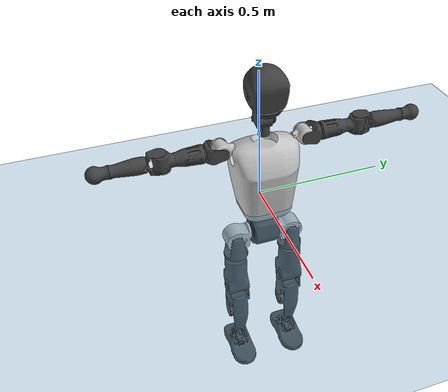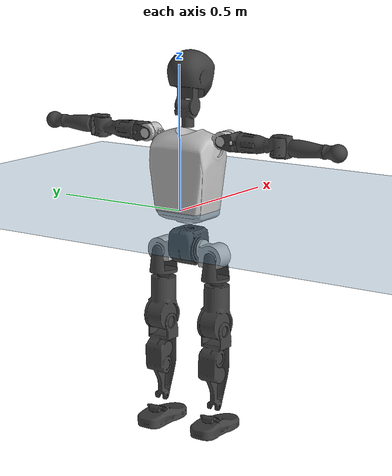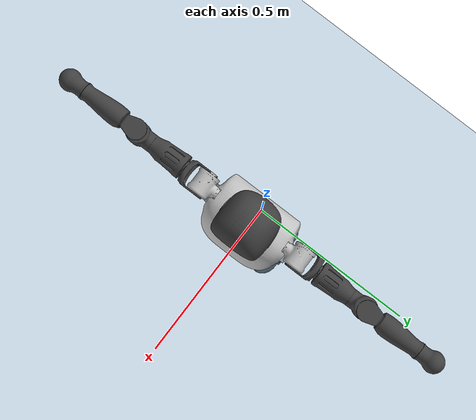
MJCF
<mujoco model="T1">
  <compiler angle="radian" assetdir="assets" balanceinertia="true" inertiafromgeom="false"/>

  <option timestep="0.005" density="1.2" viscosity="2e-05"/>

  <size nkey="1"/>

  <visual>
    <quality shadowsize="8192"/>
    <map shadowclip="0.5"/>
  </visual>

  <default>
    <default class="/">
      <joint armature="0.01" damping="0.01" frictionloss="0.1"/>
      <geom contype="0" conaffinity="0" group="1" solref="-1000 -80"/>
      <site size="0.01 0.005 0.005" group="5"/>
      <general forcelimited="true" biastype="affine" gainprm="25" biasprm="0 -25 -0.6"/>
      <default class="t1">
        <geom rgba="0.25 0.25 0.25 1"/>
        <default class="visual">
          <geom type="mesh" group="2"/>
        </default>
        <default class="collision">
          <geom group="3"/>
        </default>
        <default class="foot">
          <geom size="0.1115 0.05 0.015" type="box" condim="6" group="4" priority="1" solimp="0.015 1 0.015"/>
        </default>
        <default class="reward_collision_sphere">
          <geom group="5" rgba="1 0 0 1"/>
        </default>
      </default>
    </default>
  </default>

  <asset>
    <texture type="skybox" colorspace="auto" name="//unnamed_texture_0" builtin="gradient" rgb1="0.95 0.95 0.95" rgb2="0.95 0.95 0.95" width="100" height="600"/>
    <texture type="2d" colorspace="auto" name="texplane" builtin="checker" rgb1="0.345 0.575 0.748" rgb2="0.345 0.575 0.748" markrgb="1 1 1" width="512" height="512"/>
    <material name="MatPlane" class="/" texture="texplane" texuniform="true" texrepeat="2 2" specular="0.9"/>
    <mesh name="Trunk" class="/" file="Trunk.stl"/>
    <mesh name="H1" class="/" file="H1.stl"/>
    <mesh name="H2" class="/" file="H2.stl"/>
    <mesh name="AL1" class="/" file="AL1.stl"/>
    <mesh name="AL2" class="/" file="AL2.stl"/>
    <mesh name="AL3" class="/" file="AL3.stl"/>
    <mesh name="left_hand_link" class="/" file="left_hand_link.stl"/>
    <mesh name="AR1" class="/" file="AR1.stl"/>
    <mesh name="AR2" class="/" file="AR2.stl"/>
    <mesh name="AR3" class="/" file="AR3.stl"/>
    <mesh name="right_hand_link" class="/" file="right_hand_link.stl"/>
    <mesh name="Waist" class="/" file="Waist.stl"/>
    <mesh name="Hip_Pitch_Left" class="/" file="Hip_Pitch_Left.stl"/>
    <mesh name="Hip_Roll_Left" class="/" file="Hip_Roll_Left.stl"/>
    <mesh name="Hip_Yaw_Left" class="/" file="Hip_Yaw_Left.stl"/>
    <mesh name="Shank_Left" class="/" file="Shank_Left.stl"/>
    <mesh name="Ankle_Cross_Left" class="/" file="Ankle_Cross_Left.stl"/>
    <mesh name="left_foot_link" class="/" file="left_foot_link.stl"/>
    <mesh name="Hip_Pitch_Right" class="/" file="Hip_Pitch_Right.stl"/>
    <mesh name="Hip_Roll_Right" class="/" file="Hip_Roll_Right.stl"/>
    <mesh name="Hip_Yaw_Right" class="/" file="Hip_Yaw_Right.stl"/>
    <mesh name="Shank_Right" class="/" file="Shank_Right.stl"/>
    <mesh name="Ankle_Cross_Right" class="/" file="Ankle_Cross_Right.stl"/>
    <mesh name="right_foot_link" class="/" file="right_foot_link.stl"/>
  </asset>

  <worldbody>
    <geom name="floor" class="/" size="100 100 0.125" type="plane" group="0" material="MatPlane"/>
    <light name="toplight_shadow" class="/" pos="0 0 5" dir="0.0990148 0.0990148 -0.990148" type="directional" ambient="0.04 0.04 0.04" diffuse="0.55 0.55 0.55" specular="0.12 0.12 0.12"/>
    <light name="toplight_fill" class="/" pos="0 0 5" dir="0.0990148 0.0990148 -0.990148" type="directional" castshadow="false" ambient="0.04 0.04 0.04" diffuse="0.3 0.3 0.3" specular="0.08 0.08 0.08"/>
    <body name="trunk" childclass="t1" pos="-0.000262754 -0.00117582 -0.000548872" quat="0.999999 0.0011303 -0.00069908 -0.00032106">
      <inertial pos="0.0405673 -0.00352093 0.122727" quat="0.99996 -0.000127058 -0.00897367 6.95921e-05" mass="11.2854" diaginertia="0.0291329 0.0857629 0.120985"/>
      <joint name="//unnamed_joint_0" type="free" armature="0" damping="0" frictionloss="0"/>
      <geom name="//unnamed_geom_1" class="visual" rgba="0.76 0.76 0.76 1" mesh="Trunk"/>
      <geom name="//unnamed_geom_2" class="collision" size="0.0748603 0.0998137 0.149721" pos="0.0475921 0 0.141068" type="box"/>
      <geom name="//unnamed_geom_3" class="reward_collision_sphere" size="0.114786" pos="0.0475921 0 0.117556"/>
      <geom name="//unnamed_geom_4" class="reward_collision_sphere" size="0.0149721" pos="0.0475921 0.0871799 0"/>
      <geom name="//unnamed_geom_5" class="reward_collision_sphere" size="0.0149721" pos="0.0475921 -0.0871799 0"/>
      <geom name="//unnamed_geom_6" class="reward_collision_sphere" size="0.0149721" pos="0.0475921 0.109744 0.211602"/>
      <geom name="//unnamed_geom_7" class="reward_collision_sphere" size="0.0149721" pos="0.0475921 -0.109744 0.211602"/>
      <site name="imu" pos="0.0113454 -0.00485114 -0.0113958" size="0.00998137"/>
      <camera name="track" pos="0 -2.05129 0" quat="0.707107 0.707107 0 0" mode="trackcom"/>
      <camera name="ego_camera" pos="0.0967705 0 0.493737" quat="-0.5 -0.5 0.5 0.5"/>
      <body name="H1" pos="0.0476866 0.000714757 0.285316" quat="1 -8.40443e-05 6.3843e-05 -7.36845e-05">
        <inertial pos="-0.00313324 0.00105697 0.0683101" quat="0.762332 -0.0157534 0.0150633 0.64682" mass="0.441133" diaginertia="7.56595e-05 0.000246166 0.000317854"/>
        <joint name="AAHead_yaw" pos="0 0 0" axis="-0.0062856 0.0116301 0.999913" stiffness="0.00903948" range="-1.55925 1.59028" armature="0.0090388" damping="0.0092721" frictionloss="0.101169"/>
        <geom name="//unnamed_geom_8" class="visual" mesh="H1"/>
        <body name="H2" pos="0.00111582 0.00250712 0.0727494" quat="1 -6.48653e-05 0.000351753 0.000406514">
          <inertial pos="0.00687944 0.00360874 0.115918" quat="0.988816 0.101384 -0.0767783 -0.0779067" mass="0.626989" diaginertia="0.000663195 0.00217733 0.00387702"/>
          <joint name="Head_pitch" pos="0 0 0" axis="0.00257771 -0.999997 -0.000282028" stiffness="0.000778248" range="-1.23091 0.351478" armature="0.00862411" damping="0.0099145" frictionloss="0.111609"/>
          <geom name="//unnamed_geom_9" class="visual" mesh="H2"/>
          <geom name="//unnamed_geom_10" class="collision" size="0.0798509" pos="0.00793201 0 0.129312"/>
          <geom name="//unnamed_geom_11" class="reward_collision_sphere" size="0.0898323" pos="0.015864 0 0.117556"/>
        </body>
      </body>
      <body name="AL1" pos="0.0467882 0.108963 0.255057" quat="1 1.28785e-05 0.000410243 -3.2568e-05">
        <inertial pos="-0.00335676 0.045279 0.000822558" quat="0.504998 0.494611 -0.506044 0.494223" mass="0.531013" diaginertia="0.000436725 0.00148519 0.000645117"/>
        <joint name="Left_Shoulder_Pitch" pos="0 0 0" axis="-0.0108294 0.999902 -0.00885321" range="-3.29005 1.19822" armature="0.0105448" damping="0.00896871" frictionloss="0.100618"/>
        <geom name="//unnamed_geom_12" class="visual" rgba="0.76 0.76 0.76 1" mesh="AL1"/>
        <body name="AL2" pos="-0.000488522 0.0474268 -0.00245015" quat="1 0.0001645 -4.59667e-05 0.000183257">
          <inertial pos="0.00434329 0.0376889 -0.00297988" quat="0.485831 0.519681 -0.491309 0.502509" mass="0.154942" diaginertia="0.000124611 0.000390856 0.000388777"/>
          <joint name="Left_Shoulder_Roll" pos="0 0 0" axis="-0.99998 -0.00513307 -0.00376398" stiffness="0.00075651" range="-1.58193 1.72081" armature="0.00999997" damping="0.00211857" frictionloss="0.0990755"/>
          <geom name="//unnamed_geom_13" class="visual" mesh="AL2"/>
          <body name="AL3" pos="0.00127159 0.0629246 0.00123027" quat="1 4.67905e-05 -0.000346388 -5.28209e-05">
            <inertial pos="-0.00230824 0.0875209 -0.000534592" quat="0.703057 0.711023 -0.00658285 0.0106633" mass="1.03238" diaginertia="0.00414991 0.0146854 0.00137072"/>
            <joint name="Left_Elbow_Pitch" pos="0 0 0" axis="-0.000158103 -1 0.000351933" range="-2.26648 2.29177" armature="0.00994233" damping="0.0221406" frictionloss="0.112893"/>
            <geom name="//unnamed_geom_14" class="visual" mesh="AL3"/>
            <geom name="//unnamed_geom_15" class="collision" size="0.0299441 0.0748603" pos="0 0.0512823 0" quat="0.707105 0.707108 0 0" type="cylinder"/>
            <geom name="//unnamed_geom_16" class="reward_collision_sphere" size="0.0359329"/>
            <body name="left_hand_link" pos="0.00315643 0.153343 0.00297972" quat="1 -0.000291629 0.000448859 7.97078e-06">
              <inertial pos="0.0025549 0.11023 -0.00229103" quat="0.708055 0.706156 -0.000374238 -0.00148017" mass="0.324735" diaginertia="0.00255346 0.00946371 0.000497199"/>
              <joint name="Left_Elbow_Yaw" pos="0 0 0" axis="0.000853774 0.0063036 0.99998" range="-2.4285 0.0197398" armature="0.0110346" damping="0.0171555" frictionloss="0.099296"/>
              <geom name="//unnamed_geom_17" class="visual" mesh="left_hand_link"/>
              <geom name="//unnamed_geom_18" class="collision" size="0.0299441 0.087337" pos="0 0.133334 0" quat="0.707105 0.707108 0 0" type="cylinder"/>
              <geom name="//unnamed_geom_19" class="reward_collision_sphere" size="0.0499068"/>
              <geom name="//unnamed_geom_20" class="reward_collision_sphere" size="0.0349348" pos="0 0.112821 0"/>
              <geom name="//unnamed_geom_21" class="reward_collision_sphere" size="0.0349348" pos="0 0.220514 0"/>
            </body>
          </body>
        </body>
      </body>
      <body name="AR1" pos="0.0463771 -0.10805 0.256219" quat="0.999999 0.000905632 0.00100121 0.000392351">
        <inertial pos="-0.000408612 -0.0469869 0.000639649" quat="0.504088 0.495492 -0.502569 0.497802" mass="0.544679" diaginertia="0.000429822 0.00152107 0.000683729"/>
        <joint name="Right_Shoulder_Pitch" pos="0 0 0" axis="-0.00160413 -0.999996 0.00239027" stiffness="0.000867903" range="-1.18724 3.3097" armature="0.0100926" damping="0.00899993" frictionloss="0.0962352"/>
        <geom name="//unnamed_geom_22" class="visual" rgba="0.76 0.76 0.76 1" mesh="AR1"/>
        <body name="AR2" pos="-0.000237041 -0.0484115 -0.00283384" quat="0.999999 0.000208257 -0.00136548 0.000533208">
          <inertial pos="0.00275078 -0.0389784 0.000889882" quat="0.506248 0.482078 -0.518525 0.492388" mass="0.154182" diaginertia="0.00012257 0.000387346 0.000385156"/>
          <joint name="Right_Shoulder_Roll" pos="0 0 0" axis="-1 0.000286438 -0.000816507" range="-1.7558 1.55269" armature="0.00990438" damping="0" frictionloss="0.104214"/>
          <geom name="//unnamed_geom_23" class="visual" mesh="AR2"/>
          <body name="AR3" pos="-0.0027382 -0.0620217 -0.000250608" quat="0.999999 0.000239578 0.000594862 0.00125764">
            <inertial pos="0.00203335 -0.0875653 0.000699148" quat="0.711027 0.703159 0.00197215 0.00199912" mass="1.01076" diaginertia="0.00410378 0.0147872 0.00140084"/>
            <joint name="Right_Elbow_Pitch" pos="0 0 0" axis="0.00705083 0.999973 -0.00193989" range="-2.27418 2.22404" armature="0.0103561" damping="0.00567955" frictionloss="0.105295"/>
            <geom name="//unnamed_geom_24" class="visual" mesh="AR3"/>
            <geom name="//unnamed_geom_25" class="collision" size="0.0299441 0.0748603" pos="0 -0.0512823 0" quat="0.707105 0.707108 0 0" type="cylinder"/>
            <geom name="//unnamed_geom_26" class="reward_collision_sphere" size="0.0359329"/>
            <body name="right_hand_link" pos="-0.00266422 -0.152746 0.00219212" quat="0.999999 0.00126071 -0.00058555 0.000304384">
              <inertial pos="0.00212253 -0.112339 -0.00184466" quat="0.706456 0.707757 0.000145012 0.000133762" mass="0.31316" diaginertia="0.00241075 0.00871564 0.000483621"/>
              <joint name="Right_Elbow_Yaw" pos="0 0 0" axis="-0.00317526 -0.00290004 0.999991" range="0.0086326 2.38198" armature="0.00994577" damping="0.00517077" frictionloss="0.0981637"/>
              <geom name="//unnamed_geom_27" class="visual" mesh="right_hand_link"/>
              <geom name="//unnamed_geom_28" class="collision" size="0.0299441 0.087337" pos="0 -0.133334 0" quat="0.707105 0.707108 0 0" type="cylinder"/>
              <geom name="//unnamed_geom_29" class="reward_collision_sphere" size="0.0499068"/>
              <geom name="//unnamed_geom_30" class="reward_collision_sphere" size="0.0349348" pos="0 -0.112821 0"/>
              <geom name="//unnamed_geom_31" class="reward_collision_sphere" size="0.0349348" pos="0 -0.220514 0"/>
            </body>
          </body>
        </body>
      </body>
      <body name="Waist" pos="0.0476554 -0.00291751 -0.13428" quat="1 -0.000170566 0.00041267 -0.000131656">
        <inertial pos="0.000893181 0.00199177 0.00953373" quat="0.98359 -0.0114874 -0.179983 0.00498297" mass="2.42159" diaginertia="0.00165673 0.00576126 0.010067"/>
        <joint name="Waist" pos="0 0 0" axis="0.000352398 -0.00106494 0.999999" range="-1.58667 1.56147" armature="0.00967867" damping="0.00115667" frictionloss="0.108228"/>
        <geom name="//unnamed_geom_32" class="visual" mesh="Waist"/>
        <body name="Hip_Pitch_Left" pos="0.00355958 0.108211 -0.000709299" quat="1 -8.84236e-05 0.000329525 -0.000174902">
          <inertial pos="0.000365102 -0.00816417 -0.0241784" quat="0.975118 0.221225 0.0141624 0.00174321" mass="0.99769" diaginertia="0.000559387 0.00163302 0.00277863"/>
          <joint name="Left_Hip_Pitch" pos="0 0 0" axis="-0.00926225 0.999949 0.00399199" stiffness="0.00944756" range="-1.82122 1.62747" armature="0.0103323" damping="0" frictionloss="0.102594"/>
          <geom name="//unnamed_geom_33" class="visual" rgba="0.76 0.76 0.76 1" mesh="Hip_Pitch_Left"/>
          <body name="Hip_Roll_Left" pos="0.00298684 0.00155163 -0.0263149" quat="1 0.000115968 -9.54317e-05 -6.86075e-05">
            <inertial pos="0.00199374 -0.000550117 -0.0658458" quat="0.708173 -0.00925604 -0.00362117 0.705969" mass="0.390428" diaginertia="0.000581129 0.00172081 0.00115854"/>
            <joint name="Left_Hip_Roll" pos="0 0 0" axis="-0.99998 -0.00476786 -0.00425127" range="-1.57924 0.256645" armature="0.00932279" damping="0.00961943" frictionloss="0.0960272"/>
            <geom name="//unnamed_geom_34" class="visual" mesh="Hip_Roll_Left"/>
            <geom name="//unnamed_geom_35" class="reward_collision_sphere" size="0.0548975"/>
            <body name="Hip_Yaw_Left" pos="0.00108629 0.00241471 -0.0949473" quat="1 -2.02253e-05 4.95201e-06 -3.33663e-06">
              <inertial pos="-0.00677231 -0.00011024 -0.105152" quat="0.706158 -0.03537 -0.027674 0.706629" mass="2.11397" diaginertia="0.00817079 0.0281698 0.00598749"/>
              <joint name="Left_Hip_Yaw" pos="0 0 0" axis="0.00118593 -0.000606635 -0.999999" range="-0.978634 1.05248" armature="0.0108676" damping="0.00243503" frictionloss="0.0990689"/>
              <geom name="//unnamed_geom_36" class="visual" mesh="Hip_Yaw_Left"/>
              <geom name="//unnamed_geom_37" class="collision" size="0.0499068 0.0798509" type="cylinder"/>
              <body name="Shank_Left" pos="-0.01045 0.000620963 -0.160442" quat="1 -0.000135116 -0.000484163 0.000196718">
                <inertial pos="-0.0037751 8.3807e-05 -0.148855" quat="0.997393 -0.00186724 -0.0278167 0.0665529" mass="1.72894" diaginertia="0.0109502 0.0382636 0.00396868"/>
                <joint name="Left_Knee_Pitch" pos="0 0 0" axis="0.000426276 1 -0.000176614" stiffness="0.00870165" range="0.0329742 2.33019" armature="0.0101856" damping="0.00885196" frictionloss="0.102542"/>
                <geom name="//unnamed_geom_38" class="visual" mesh="Shank_Left"/>
                <geom name="//unnamed_geom_39" class="collision" size="0.0499068 0.0748603" pos="0 0 -0.141068" type="cylinder"/>
                <geom name="//unnamed_geom_40" class="reward_collision_sphere" size="0.0648789"/>
                <body name="Ankle_Cross_Left" pos="-0.000639681 -0.000239486 -0.331951" quat="1 -0.000227689 -0.000405604 -0.000114255">
                  <inertial pos="-0.00549436 0.00279752 -0.00941584" quat="0.443109 0.551176 0.550595 0.443515" mass="0.0702029" diaginertia="9.23864e-06 2.8094e-05 2.55819e-05"/>
                  <joint name="Left_Ankle_Pitch" pos="0 0 0" axis="0.00874653 0.999923 0.00875114" range="-0.91316 0.330117" armature="0.00857172" damping="0.00981865" frictionloss="0.10801"/>
                  <geom name="//unnamed_geom_41" class="visual" mesh="Ankle_Cross_Left"/>
                  <body name="left_foot_link" pos="0.000102456 0.000956392 -0.0121265" quat="0.999999 -0.000233532 0.00121066 0.000548791">
                    <inertial pos="-0.00283356 0.000829878 -0.0108732" quat="-0.000492309 0.615092 0.000600971 0.788455" mass="0.665756" diaginertia="0.000865491 0.00267747 0.00507924"/>
                    <joint name="Left_Ankle_Roll" pos="0 0 0" axis="-0.999993 -0.00128762 0.00362288" range="-0.496266 0.386602" armature="0.0108058" damping="0.0168683" frictionloss="0.0861099"/>
                    <geom name="//unnamed_geom_42" class="visual" mesh="left_foot_link"/>
                    <geom name="left_foot" class="foot" size="0.107198 0.0470399 0.0157712" pos="0.00793201 0 -0.0176335"/>
                    <geom name="//unnamed_geom_44" class="reward_collision_sphere" size="0.0519031" pos="0.00793201 0 -0.0176335"/>
                    <geom name="//unnamed_geom_45" class="reward_collision_sphere" size="0.0299441" pos="0.0753541 -0.0235898 -0.0176335"/>
                    <geom name="//unnamed_geom_46" class="reward_collision_sphere" size="0.0299441" pos="-0.0555241 -0.0235898 -0.0176335"/>
                    <site name="left_foot" class="foot" pos="0.00793201 0 -0.0176335" size="0.00998137"/>
                  </body>
                </body>
              </body>
            </body>
          </body>
        </body>
        <body name="Hip_Pitch_Right" pos="-0.00213229 -0.111658 0.00058976" quat="0.999999 0.000850456 0.00034734 0.00054494">
          <inertial pos="0.000600305 0.00531141 -0.0191352" quat="0.973606 -0.22754 0.01606 -0.00772435" mass="1.01274" diaginertia="0.000580573 0.00169849 0.00293231"/>
          <joint name="Right_Hip_Pitch" pos="0 0 0" axis="-0.000841555 -0.999994 0.00330352" range="-1.5725 1.79065" armature="0.011197" damping="0.00555955" frictionloss="0.0971828"/>
          <geom name="//unnamed_geom_47" class="visual" rgba="0.76 0.76 0.76 1" mesh="Hip_Pitch_Right"/>
          <body name="Hip_Roll_Right" pos="0.00231925 -0.00273706 -0.0254396" quat="1 -4.03496e-05 -1.31459e-05 -0.000114179">
            <inertial pos="0.000858319 5.1253e-05 -0.0606749" quat="0.707572 -0.00641483 -0.00619771 0.706585" mass="0.403965" diaginertia="0.000559916 0.00181331 0.00117219"/>
            <joint name="Right_Hip_Roll" pos="0 0 0" axis="-0.999962 -0.00457092 0.0074456" stiffness="0.010027" range="-0.202045 1.52091" armature="0.00931028" damping="0" frictionloss="0.0864658"/>
            <geom name="//unnamed_geom_48" class="visual" mesh="Hip_Roll_Right"/>
            <geom name="//unnamed_geom_49" class="reward_collision_sphere" size="0.0548975"/>
            <body name="Hip_Yaw_Right" pos="0.0026704 -0.00271763 -0.094545" quat="1 0.000553086 0.000160269 0.000489588">
              <inertial pos="-0.00433404 -0.00270637 -0.102897" quat="0.715412 -0.0323678 -0.0217032 0.697615" mass="2.17216" diaginertia="0.00784485 0.0294055 0.00564513"/>
              <joint name="Right_Hip_Yaw" pos="0 0 0" axis="0.00926384 0.00342513 -0.999951" stiffness="0.0108257" range="-1.02177 0.986499" armature="0.00865831" damping="0.0182029" frictionloss="0.0976912"/>
              <geom name="//unnamed_geom_50" class="visual" mesh="Hip_Yaw_Right"/>
              <geom name="//unnamed_geom_51" class="collision" size="0.0499068 0.0798509" type="cylinder"/>
              <body name="Shank_Right" pos="-0.00844916 0.00137957 -0.158618" quat="0.999999 0.00109752 0.000146869 0.000231469">
                <inertial pos="-0.00373162 -0.000593629 -0.145013" quat="0.999372 0.0087975 -0.0268631 -0.0213458" mass="1.7568" diaginertia="0.0113589 0.0394379 0.00449927"/>
                <joint name="Right_Knee_Pitch" pos="0 0 0" axis="0.00189511 -0.999997 0.00170493" range="-2.33858 0.0404433" armature="0.010017" damping="0.0225887" frictionloss="0.0998241"/>
                <geom name="//unnamed_geom_52" class="visual" mesh="Shank_Right"/>
                <geom name="//unnamed_geom_53" class="collision" size="0.0499068 0.0748603" pos="0 0 -0.141068" type="cylinder"/>
                <geom name="//unnamed_geom_54" class="reward_collision_sphere" size="0.0648789"/>
                <body name="Ankle_Cross_Right" pos="0.0018067 0.000704644 -0.331026" quat="0.999999 -0.000560669 0.000687657 0.000970488">
                  <inertial pos="-0.00216714 0.00289205 -0.0100574" quat="0.443379 0.550888 0.551208 0.44284" mass="0.0721556" diaginertia="8.82287e-06 2.9112e-05 2.45953e-05"/>
                  <joint name="Right_Ankle_Pitch" pos="0 0 0" axis="-0.00481342 -0.99995 -0.00873741" range="-0.396491 0.855632" armature="0.00985532" damping="0.00507784" frictionloss="0.104946"/>
                  <geom name="//unnamed_geom_55" class="visual" mesh="Ankle_Cross_Right"/>
                  <body name="right_foot_link" pos="0.00324086 -0.00050907 -0.0130475" quat="1 -8.10237e-05 -0.000178495 0.000174739">
                    <inertial pos="7.73702e-05 0.00251624 -0.0109604" quat="-0.00522148 0.620315 -0.00175979 0.784334" mass="0.724366" diaginertia="0.000884959 0.00278986 0.00506431"/>
                    <joint name="Right_Ankle_Roll" pos="0 0 0" axis="-0.999984 0.00517122 0.00230318" range="-0.417813 0.406518" armature="0.00998281" damping="0.0052081" frictionloss="0.0868118"/>
                    <geom name="//unnamed_geom_56" class="visual" mesh="right_foot_link"/>
                    <geom name="right_foot" class="foot" size="0.0996978 0.0490703 0.0155739" pos="0.00793201 0 -0.0176335"/>
                    <geom name="//unnamed_geom_58" class="reward_collision_sphere" size="0.0399255"/>
                    <geom name="//unnamed_geom_59" class="reward_collision_sphere" size="0.0299441" pos="0.00793201 0 -0.0176335"/>
                    <geom name="//unnamed_geom_60" class="reward_collision_sphere" size="0.0299441" pos="0.0753541 0.0235898 -0.0176335"/>
                    <geom name="//unnamed_geom_61" class="reward_collision_sphere" size="0.0299441" pos="-0.0555241 0.0235898 -0.0176335"/>
                    <site name="right_foot" class="foot" pos="0.00793201 0 -0.0176335" size="0.00998137"/>
                  </body>
                </body>
              </body>
            </body>
          </body>
        </body>
      </body>
    </body>
  </worldbody>

  <contact>
    <pair class="/" geom1="floor" geom2="left_foot" name="//unnamed_contact_0"/>
    <pair class="/" geom1="floor" geom2="right_foot" name="//unnamed_contact_1"/>
  </contact>

  <actuator>
    <general name="AAHead_yaw" class="/" joint="AAHead_yaw" forcerange="-7.10361 7.10361" gainprm="23.2557" biasprm="0 -23.2557 -0.604684"/>
    <general name="Head_pitch" class="/" joint="Head_pitch" forcerange="-6.88208 6.88208" gainprm="23.2557" biasprm="0 -23.2557 -0.604684"/>
    <general name="Left_Shoulder_Pitch" class="/" joint="Left_Shoulder_Pitch" forcerange="-16.3372 16.3372" gainprm="23.2557" biasprm="0 -23.2557 -0.604684"/>
    <general name="Left_Shoulder_Roll" class="/" joint="Left_Shoulder_Roll" forcerange="-17.8103 17.8103" gainprm="23.2557" biasprm="0 -23.2557 -0.604684"/>
    <general name="Left_Elbow_Pitch" class="/" joint="Left_Elbow_Pitch" forcerange="-17.3146 17.3146" gainprm="23.2557" biasprm="0 -23.2557 -0.604684"/>
    <general name="Left_Elbow_Yaw" class="/" joint="Left_Elbow_Yaw" forcerange="-17.7849 17.7849" gainprm="23.2557" biasprm="0 -23.2557 -0.604684"/>
    <general name="Right_Shoulder_Pitch" class="/" joint="Right_Shoulder_Pitch" forcerange="-18.749 18.749" gainprm="23.2557" biasprm="0 -23.2557 -0.604684"/>
    <general name="Right_Shoulder_Roll" class="/" joint="Right_Shoulder_Roll" forcerange="-18.2939 18.2939" gainprm="23.2557" biasprm="0 -23.2557 -0.604684"/>
    <general name="Right_Elbow_Pitch" class="/" joint="Right_Elbow_Pitch" forcerange="-17.0098 17.0098" gainprm="23.2557" biasprm="0 -23.2557 -0.604684"/>
    <general name="Right_Elbow_Yaw" class="/" joint="Right_Elbow_Yaw" forcerange="-16.8996 16.8996" gainprm="23.2557" biasprm="0 -23.2557 -0.604684"/>
    <general name="Waist" class="/" joint="Waist" forcerange="-28.6231 28.6231" gainprm="23.2557" biasprm="0 -23.2557 -0.604684"/>
    <general name="Left_Hip_Pitch" class="/" joint="Left_Hip_Pitch" forcerange="-45.1935 45.1935" gainprm="23.2557" biasprm="0 -23.2557 -0.604684"/>
    <general name="Left_Hip_Roll" class="/" joint="Left_Hip_Roll" forcerange="-28.5671 28.5671" gainprm="23.2557" biasprm="0 -23.2557 -0.604684"/>
    <general name="Left_Hip_Yaw" class="/" joint="Left_Hip_Yaw" forcerange="-28.5108 28.5108" gainprm="23.2557" biasprm="0 -23.2557 -0.604684"/>
    <general name="Left_Knee_Pitch" class="/" joint="Left_Knee_Pitch" forcerange="-60.2415 60.2415" gainprm="23.2557" biasprm="0 -23.2557 -0.604684"/>
    <general name="Left_Ankle_Pitch" class="/" joint="Left_Ankle_Pitch" forcerange="-21.9582 21.9582" gainprm="23.2557" biasprm="0 -23.2557 -0.604684"/>
    <general name="Left_Ankle_Roll" class="/" joint="Left_Ankle_Roll" forcerange="-13.4278 13.4278" gainprm="23.2557" biasprm="0 -23.2557 -0.604684"/>
    <general name="Right_Hip_Pitch" class="/" joint="Right_Hip_Pitch" forcerange="-45.4757 45.4757" gainprm="23.2557" biasprm="0 -23.2557 -0.604684"/>
    <general name="Right_Hip_Roll" class="/" joint="Right_Hip_Roll" forcerange="-32.9872 32.9872" gainprm="23.2557" biasprm="0 -23.2557 -0.604684"/>
    <general name="Right_Hip_Yaw" class="/" joint="Right_Hip_Yaw" forcerange="-27.1741 27.1741" gainprm="23.2557" biasprm="0 -23.2557 -0.604684"/>
    <general name="Right_Knee_Pitch" class="/" joint="Right_Knee_Pitch" forcerange="-54.8096 54.8096" gainprm="23.2557" biasprm="0 -23.2557 -0.604684"/>
    <general name="Right_Ankle_Pitch" class="/" joint="Right_Ankle_Pitch" forcerange="-19.7325 19.7325" gainprm="23.2557" biasprm="0 -23.2557 -0.604684"/>
    <general name="Right_Ankle_Roll" class="/" joint="Right_Ankle_Roll" forcerange="-16.4955 16.4955" gainprm="23.2557" biasprm="0 -23.2557 -0.604684"/>
  </actuator>

  <sensor>
    <gyro site="imu" name="imu_angular_velocity"/>
    <velocimeter site="imu" name="imu_linear_velocity"/>
    <framelinvel objtype="site" objname="left_foot" name="left_foot_global_linear_velocity"/>
    <framelinvel objtype="site" objname="right_foot" name="right_foot_global_linear_velocity"/>
  </sensor>

  <keyframe>
    <key name="home" qpos="0 0 0.6385 1 0 0 0 0 0 0 1.4 0 -0.4 0 -1.4 0 0.4 0 -0.4 0 0 0.8 -0.4 0 0.4 0 0 -0.8 0.4 0"/>
  </keyframe>
</mujoco>
